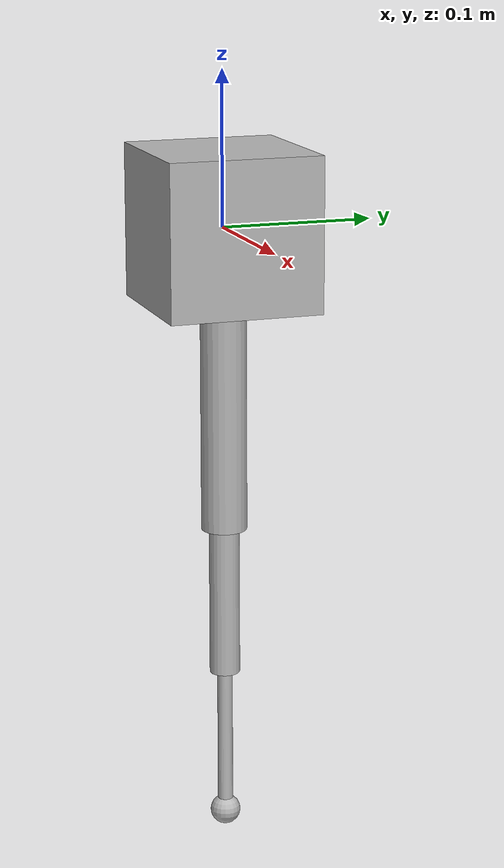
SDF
<?xml version="1.0"?>
<sdf version="1.7">
	<model name="HoppingRobot2d">
		<link name="base_link">
			<pose>0 0 0 0 0 0</pose>
			<inertial>
				<pose>0 0 0 0 0 0</pose>
				<mass>1.4</mass>
				<inertia>
					<ixx>0.0023</ixx>
					<ixy>0</ixy>
					<ixz>0</ixz>
					<iyy>0.0023</iyy>
					<iyz>0</iyz>
					<izz>0.0023</izz>
				</inertia>
			</inertial>
			<collision name="base_link_collision">
				<geometry>
					<box>
						<size>0.1 0.1 0.1</size>
					</box>
				</geometry>
			</collision>
			<visual name="base_link_visual">
				<geometry>
					<box>
						<size>0.1 0.1 0.1</size>
					</box>
				</geometry>
			</visual>
		</link>

		<link name="upper_link">
			<pose>0 0 0 0 0 0</pose>
			<inertial>
				<pose>0 0 -0.1 0 0 0</pose>
				<mass>0.5</mass>
				<inertia>
					<ixx>0.0017</ixx>
					<ixy>0</ixy>
					<ixz>0</ixz>
					<iyy>0.0017</iyy>
					<iyz>0</iyz>
					<izz>0.00005625</izz>
				</inertia>
			</inertial>
			<collision name="upper_link_collision">
				<pose>0 0 -0.1 0 0 0</pose>
				<geometry>
					<cylinder>
						<length>0.2</length>
						<radius>0.015</radius>
					</cylinder>
				</geometry>
			</collision>
			<visual name="upper_link_visual">
				<pose>0 0 -0.1 0 0 0</pose>
				<geometry>
					<cylinder>
						<length>0.2</length>
						<radius>0.015</radius>
					</cylinder>
				</geometry>
			</visual>
		</link>
		<joint name="shoulder" type="fixed">
			<child>upper_link</child>
			<parent>base_link</parent>
		</joint>

		<link name="lower_link">
			<pose relative_to="upper_link">0 0 -0.2 0 0 0</pose>
			<inertial>
				<pose>0 0 -0.05 0 0 0</pose>
				<mass>0.3</mass>
				<inertia>
					<ixx>0.00075</ixx>
					<ixy>0</ixy>
					<ixz>0</ixz>
					<iyy>0.00075</iyy>
					<iyz>0</iyz>
					<izz>0.000005</izz>
				</inertia>
			</inertial>
			<collision name="lower_link_collision">
				<pose>0 0 -0.05 0 0 0</pose>
				<geometry>
					<cylinder>
						<length>0.1</length>
						<radius>0.01</radius>
					</cylinder>
				</geometry>
			</collision>
			<visual name="lower_link_visual">
				<pose>0 0 -0.05 0 0 0</pose>
				<geometry>
					<cylinder>
						<length>0.1</length>
						<radius>0.01</radius>
					</cylinder>
				</geometry>
			</visual>
		</link>
		<joint name="elbow" type="revolute">
			<child>lower_link</child>
			<parent>upper_link</parent>
			<axis>
				<xyz expressed_in="__model__">0 1 0</xyz>
				<limit>
					<!-- 2.36 = 3/4*pi = 135 degrees-->
					<lower>-2.36</lower>
					<upper>2.36</upper>
				</limit>
				<dynamics>
					<damping>0.1</damping>
					<friction>0</friction>
					<spring_reference>0</spring_reference>
					<spring_stiffness>0</spring_stiffness>
				</dynamics>
			</axis>
		</joint>

		<link name="foot_link">
			<pose relative_to="lower_link">0 0.0 -0.1 0 0 0</pose>
			<inertial>
				<pose>0 0 -0.05 0 0 0</pose>
				<mass>0.3</mass>
				<inertia>
					<ixx>0.00075</ixx>
					<ixy>0</ixy>
					<ixz>0</ixz>
					<iyy>0.00075</iyy>
					<iyz>0</iyz>
					<izz>0.000005</izz>
				</inertia>
			</inertial>
			<collision name="foot_link_collision">
				<pose>0 0 -0.1 0 0 0</pose>
				<geometry>
					<sphere>
						<radius>0.01</radius>
					</sphere>
				</geometry>
			</collision>
			<visual name="foot_link_visual">
				<pose>0 0 -0.05 0 0 0</pose>
				<geometry>
					<cylinder>
						<length>0.1</length>
						<radius>0.005</radius>
					</cylinder>
				</geometry>
			</visual>
			<visual name="foot_sphere_visual">
				<pose>0 0 -0.1 0 0 0</pose>
				<geometry>
					<sphere>
						<radius>0.01</radius>
					</sphere>
				</geometry>
			</visual>
		</link>
		<joint name="spring" type="prismatic">
			<child>foot_link</child>
			<parent>lower_link</parent>
			<axis>
				<xyz expressed_in="__model__">0 0 1</xyz>
				<limit>
					<lower>-0.15</lower>
					<upper>0.15</upper>
				</limit>
				<dynamics>
					<damping>0.2</damping>
					<friction>0</friction>
					<spring_reference>0</spring_reference>
					<spring_stiffness>1000</spring_stiffness>
				</dynamics>
			</axis>
		</joint>
		<frame name="foot">
			<pose relative_to="foot_link">0 0 -0.1 0 0 0</pose>
		</frame>
	</model>
</sdf>
